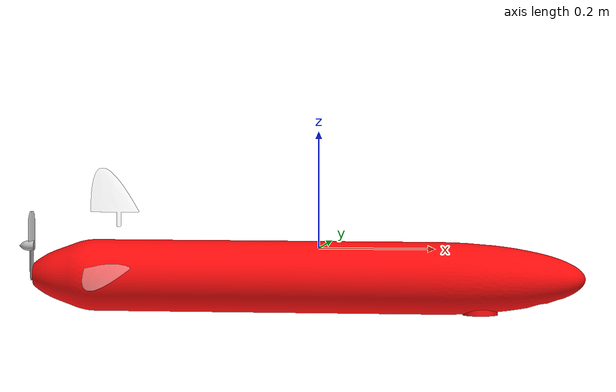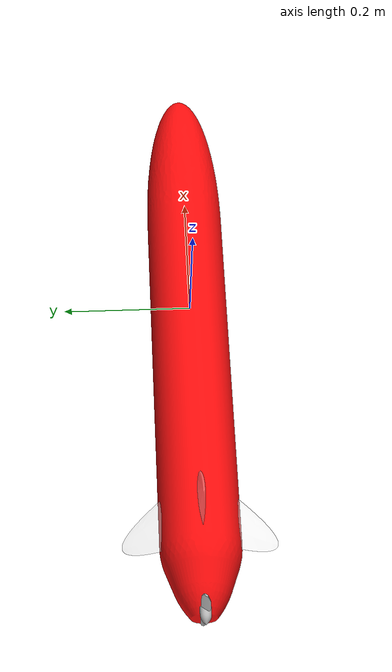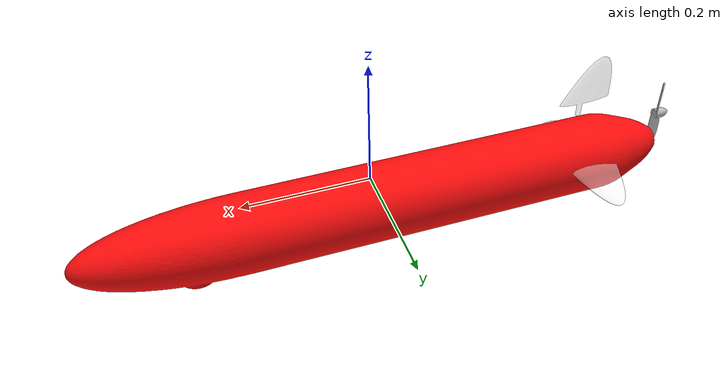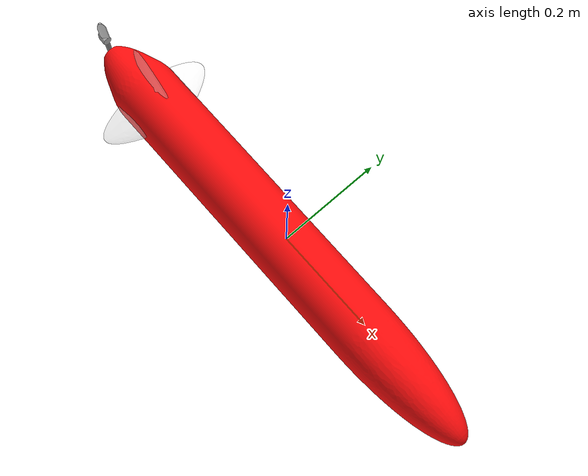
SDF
<?xml version="1.0" ?>
<sdf version="1.9">
    <model name="riptide" canonical_link="base_link">
        <link name="base_link">
            <pose relative_to='__model__'>0 0 -0.05 0 0 0</pose>
            <inertial>
                <mass>11</mass>
                <inertia>
                    <ixx>0.03675</ixx>
                    <ixy>0</ixy>
                    <ixz>0</ixz>
                    <iyy>1.1465</iyy>
                    <iyz>0</iyz>
                    <izz>1.1465</izz>
                </inertia>
            </inertial>

            <collision name='collision_buoyancy'>
                <pose relative_to="__model__">0 0 0.05 0 0 0</pose>
                <geometry>
                    <box>
                        <size>1. 0.11 0.11</size>
                    </box>
                </geometry>
            </collision>

            <visual name='visual'>
                <pose relative_to="__model__">0.2 0 0 1.5707 0 3.14159</pose>
                <geometry>
                    <mesh>
                        <scale>0.001 0.001 0.001</scale>
                        <uri>model://riptide_description_sim/meshes/riptide_body.stl</uri>
                    </mesh>
                </geometry>
                <material>
                    <ambient>1. 0.05 0.05 1</ambient>
                    <diffuse>1. 0.05 0.05 1</diffuse>
                    <specular>1. 0.15 0.15 1</specular>
                </material>
            </visual>
        </link>

        <link name="propeller">
            <pose relative_to="propeller_joint">-0.005 0 0 0 0 3.14159</pose>
            <inertial>
                <mass>0.02</mass>
                <inertia>
                    <ixx>0.00001</ixx>
                    <ixy>0</ixy>
                    <ixz>0</ixz>
                    <iyy>0.00001</iyy>
                    <iyz>0</iyz>
                    <izz>0.000005</izz>
                </inertia>
            </inertial>

            <collision name='collision'>
                <pose>0 0 0 0 1.5707 0</pose>
                <geometry>
                    <cylinder>
                        <radius>0.04</radius>
                        <length>0.03</length>
                    </cylinder>
                </geometry>
            </collision>

            <visual name='visual'>
                <pose>0 0 0 0 0 3.14159</pose>
                <geometry>
                    <mesh>
                        <scale>1.5 1.5 1.5</scale>
                        <uri>meshes/propeller.dae</uri>
                    </mesh>
                </geometry>
                <material>
                    <ambient>0.05 0.35. 1. 1</ambient>
                    <diffuse>0.05 0.35. 1. 1</diffuse>
                    <specular>0.15 0.45. 1. 1</specular>
                </material>
            </visual>
        </link>

        <link name="d_fin">
            <pose relative_to="d_fin_joint">0 0 -0.01 0 0 0</pose>
            <inertial>
                <mass>0.02</mass>
                <inertia>
                    <ixx>0.00001</ixx>
                    <ixy>0</ixy>
                    <ixz>0</ixz>
                    <iyy>0.00001</iyy>
                    <iyz>0</iyz>
                    <izz>0.000005</izz>
                </inertia>
            </inertial>

            <collision name='collision'>
                <pose>-0.01 0 0.04 0 0 0</pose>
                <geometry>
                    <box>
                        <size>0.08 0.01 0.08</size>
                    </box>
                </geometry>
            </collision>

            <visual name='visual'>
                <pose>0 0 0 1.5707 0 3.14159</pose>
                <geometry>
                    <mesh>
                        <scale>0.001 0.001 0.001</scale>
                        <uri>meshes/riptide_fin.stl</uri>
                    </mesh>
                </geometry>
                <material>
                    <ambient>1. 1. 1. 0.4</ambient>
                    <diffuse>1. 1. 1. 0.4</diffuse>
                    <specular>1. 1. 1. 0.4</specular>
                </material>
            </visual>
        </link>

        <link name="p_fin">
            <pose relative_to="p_fin_joint">0 0 -0.01 0 0 0</pose>
            <inertial>
                <mass>0.02</mass>
                <inertia>
                    <ixx>0.00001</ixx>
                    <ixy>0</ixy>
                    <ixz>0</ixz>
                    <iyy>0.00001</iyy>
                    <iyz>0</iyz>
                    <izz>0.000005</izz>
                </inertia>
            </inertial>

            <collision name='collision'>
                <pose>-0.01 0 0.04 0 0 0</pose>
                <geometry>
                    <box>
                        <size>0.08 0.01 0.08</size>
                    </box>
                </geometry>
            </collision>

            <visual name='visual'>
                <pose>0 0 0 1.5707 0 3.14159</pose>
                <geometry>
                    <mesh>
                        <scale>0.001 0.001 0.001</scale>
                        <uri>meshes/riptide_fin.stl</uri>
                    </mesh>
                </geometry>
                <material>
                    <ambient>1. 1. 1. 0.4</ambient>
                    <diffuse>1. 1. 1. 0.4</diffuse>
                    <specular>1. 1. 1. 0.4</specular>
                </material>
            </visual>
        </link>

        <link name="s_fin">
            <pose relative_to="s_fin_joint">0 0 -0.01 0 0 0</pose>
            <inertial>
                <mass>0.02</mass>
                <inertia>
                    <ixx>0.00001</ixx>
                    <ixy>0</ixy>
                    <ixz>0</ixz>
                    <iyy>0.00001</iyy>
                    <iyz>0</iyz>
                    <izz>0.000005</izz>
                </inertia>
            </inertial>

            <collision name='collision'>
                <pose>-0.01 0 0.04 0 0 0</pose>
                <geometry>
                    <box>
                        <size>0.08 0.01 0.08</size>
                    </box>
                </geometry>
            </collision>

            <visual name='visual'>
                <pose>0 0 0 1.5707 0 3.14159</pose>
                <geometry>
                    <mesh>
                        <scale>0.001 0.001 0.001</scale>
                        <uri>meshes/riptide_fin.stl</uri>
                    </mesh>
                </geometry>
                <material>
                    <ambient>1. 1. 1. 0.4</ambient>
                    <diffuse>1. 1. 1. 0.4</diffuse>
                    <specular>1. 1. 1. 0.4</specular>
                </material>
            </visual>
        </link>

        <joint name='propeller_joint' type='revolute'>
            <pose relative_to='__model__'>-0.5 0 0 0 0 0</pose>
            <parent>base_link</parent>
            <child>propeller</child>
            <axis>
                <xyz expressed_in='base_link'>1 0 0</xyz>
            </axis>
        </joint>

        <joint name='d_fin_joint' type='revolute'>
            <pose relative_to='__model__'>-0.35 0 0.07 0 0 0</pose>
            <parent>base_link</parent>
            <child>d_fin</child>
            <axis>
                <xyz expressed_in='d_fin_joint'>0 0 1</xyz>
                <limit>
                    <lower>-0.78539</lower>
                    <upper>0.78539</upper>
                    <velocity>8.7</velocity>
                    <effort>500</effort>
                </limit>
            </axis>
        </joint>

        <joint name='p_fin_joint' type='revolute'>
            <pose relative_to='__model__'>-0.35 0.0606 -0.035 -2.094 0 0</pose>
            <parent>base_link</parent>
            <child>p_fin</child>
            <axis>
                <xyz expressed_in='p_fin_joint'>0 0 1</xyz>
                <limit>
                    <lower>-0.78539</lower>
                    <upper>0.78539</upper>
                    <velocity>8.7</velocity>
                    <effort>500</effort>
                </limit>
            </axis>
        </joint>

        <joint name='s_fin_joint' type='revolute'>
            <pose relative_to='__model__'>-0.35 -0.0606 -0.035 2.094 0 0</pose>
            <parent>base_link</parent>
            <child>s_fin</child>
            <axis>
                <xyz expressed_in='s_fin_joint'>0 0 1</xyz>
                <limit>
                    <lower>-0.78539</lower>
                    <upper>0.78539</upper>
                    <velocity>8.7</velocity>
                    <effort>500</effort>
                </limit>
            </axis>
        </joint>

        <plugin filename="ignition-gazebo-thruster-system" name="ignition::gazebo::systems::Thruster">
            <joint_name>propeller_joint</joint_name>
            <thrust_coefficient>0.004422</thrust_coefficient>
            <fluid_density>1000</fluid_density>
            <propeller_diameter>0.1</propeller_diameter>
            <use_angvel_cmd>true</use_angvel_cmd>
        </plugin>

        <plugin filename="ignition-gazebo-hydrodynamics-system" name="ignition::gazebo::systems::Hydrodynamics">
            <link_name>base_link</link_name>
            <xDotU>-0.01</xDotU>
            <yDotV>-0.05</yDotV>
            <zDotW>-0.05</zDotW>
            <kDotP>-0.01</kDotP>
            <mDotQ>-0.05</mDotQ>
            <nDotR>-0.05</nDotR>

            <xUabsU>-5</xUabsU>
            <yVabsV>-1000</yVabsV>
            <zWabsW>-1000</zWabsW>
            <kPabsP>-1</kPabsP>
            <mQabsQ>-700</mQabsQ>
            <nRabsR>-700</nRabsR>

            <xU>-0.1</xU>
            <yV>-0.1</yV>
            <zW>-0.1</zW>
            <kP>-0.1</kP>
            <mQ>-0.1</mQ>
            <nR>-0.1</nR>
        </plugin>

        <plugin filename="ignition-gazebo-joint-position-controller-system" name="ignition::gazebo::systems::JointPositionController">
            <joint_name>d_fin_joint</joint_name>
            <use_velocity_commands>1</use_velocity_commands>
            <p_gain>10000</p_gain>
        </plugin>

        <plugin filename="ignition-gazebo-joint-position-controller-system" name="ignition::gazebo::systems::JointPositionController">
            <joint_name>p_fin_joint</joint_name>
            <use_velocity_commands>1</use_velocity_commands>
            <p_gain>10000</p_gain>
        </plugin>
        <plugin filename="ignition-gazebo-joint-position-controller-system" name="ignition::gazebo::systems::JointPositionController">
            <joint_name>s_fin_joint</joint_name>
            <use_velocity_commands>1</use_velocity_commands>
            <p_gain>10000</p_gain>
        </plugin>

        <plugin filename="ignition-gazebo-lift-drag-system" name="ignition::gazebo::systems::LiftDrag">
            <link_name>d_fin</link_name>
            <control_joint_name>d_fin_joint</control_joint_name>
            <air_density>1000</air_density>
            <cla>4.13</cla>
            <cla_stall>-1.1</cla_stall>
            <cda>0.2</cda>
            <cda_stall>0.03</cda_stall>
            <alpha_stall>0.17</alpha_stall>
            <a0>0</a0>
            <area>0.0244</area>
            <upward>0 1 0</upward>
            <forward>1 0 0</forward>
            <cp>0 0 0.05</cp>
        </plugin>

        <plugin filename="ignition-gazebo-lift-drag-system" name="ignition::gazebo::systems::LiftDrag">
            <link_name>p_fin</link_name>
            <control_joint_name>p_fin_joint</control_joint_name>
            <air_density>1000</air_density>
            <cla>4.13</cla>
            <cla_stall>-1.1</cla_stall>
            <cda>0.2</cda>
            <cda_stall>0.03</cda_stall>
            <alpha_stall>0.17</alpha_stall>
            <a0>0</a0>
            <area>0.0244</area>
            <upward>0 1 0</upward>
            <forward>1 0 0</forward>
            <cp>0 0 0.05</cp>
        </plugin>

        <plugin filename="ignition-gazebo-lift-drag-system" name="ignition::gazebo::systems::LiftDrag">
            <link_name>s_fin</link_name>
            <control_joint_name>s_fin_joint</control_joint_name>
            <air_density>1000</air_density>
            <cla>4.13</cla>
            <cla_stall>-1.1</cla_stall>
            <cda>0.2</cda>
            <cda_stall>0.03</cda_stall>
            <alpha_stall>0.17</alpha_stall>
            <a0>0</a0>
            <area>0.0244</area>
            <upward>0 1 0</upward>
            <forward>1 0 0</forward>
            <cp>0 0 0.05</cp>
        </plugin>

    </model>
</sdf>
